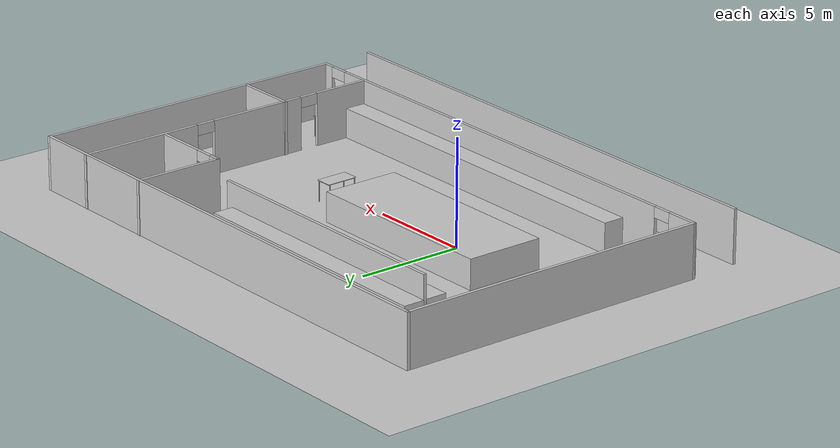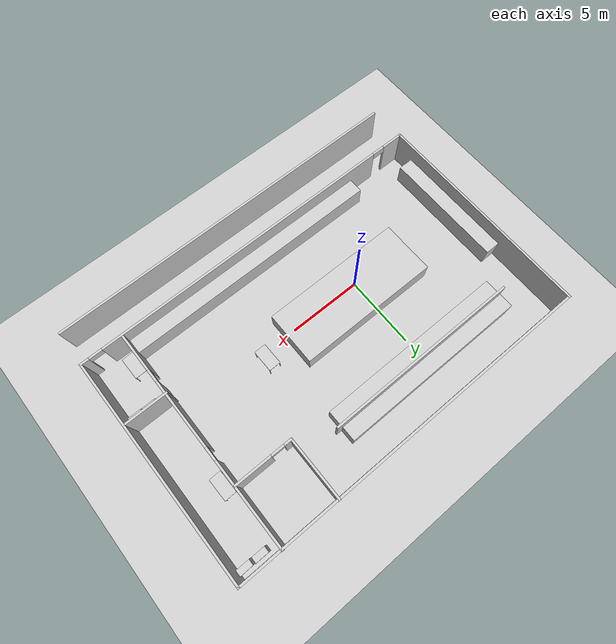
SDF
<sdf version="1.8">
 <world name="lab">
  <model name="ground_plane">
   <static>1</static>
   <link name="link">
    <collision name="collision">
     <geometry><plane><normal>0 0 1</normal><size>100 100</size></plane></geometry>
     <surface>
      <contact><collide_bitmask>65535</collide_bitmask></contact>
      <friction><ode><mu>100</mu><mu2>50</mu2></ode></friction>
     </surface>
    </collision>
    <visual name="visual">
     <cast_shadows>0</cast_shadows>
     <geometry><plane><normal>0 0 1</normal><size>100 100</size></plane></geometry>
     <material>
      <ambient>0.8 0.8 0.8 1.0</ambient>
      <diffuse>0.8 0.8 0.8 1.0</diffuse>
      <specular>0.2 0.2 0.2 1.0</specular>
     </material>
    </visual>
   </link>
  </model>
  <model name="robotics_lab.world">
   <pose>3.78652 0.790514 0 0 -0 0</pose>
   <link name="Wall_1">
    <collision name="Wall_1_Collision">
     <geometry><box><size>24.75 0.15 2.5</size></box></geometry>
     <pose>0 0 1.25 0 -0 0</pose>
    </collision>
    <visual name="Wall_1_Visual">
     <pose>0 0 1.25 0 -0 0</pose>
     <geometry><box><size>24.75 0.15 2.5</size></box></geometry>
     <material>
      <ambient>1 1 1 1</ambient>
      <diffuse>0.8 0.8 0.8 1.0</diffuse>
      <specular>0.2 0.2 0.2 1.0</specular>
     </material>
     <meta><layer>0</layer></meta>
    </visual>
    <pose>0.061202 -8.77446 0 0 -0 0</pose>
   </link>
   <link name="Wall_11">
    <collision name="Wall_11_Collision">
     <geometry><box><size>3 0.15 2.5</size></box></geometry>
     <pose>0 0 1.25 0 -0 0</pose>
    </collision>
    <visual name="Wall_11_Visual">
     <pose>0 0 1.25 0 -0 0</pose>
     <geometry><box><size>3 0.15 2.5</size></box></geometry>
     <material>
      <ambient>1 1 1 1</ambient>
      <diffuse>0.8 0.8 0.8 1.0</diffuse>
      <specular>0.2 0.2 0.2 1.0</specular>
     </material>
     <meta><layer>0</layer></meta>
    </visual>
    <pose>10.9822 -1.85152 0 0 -0 0</pose>
   </link>
   <link name="Wall_13">
    <collision name="Wall_13_Collision">
     <geometry><box><size>4.25 0.15 2.5</size></box></geometry>
     <pose>0 0 1.25 0 -0 0</pose>
    </collision>
    <visual name="Wall_13_Visual">
     <pose>0 0 1.25 0 -0 0</pose>
     <geometry><box><size>4.25 0.15 2.5</size></box></geometry>
     <material>
      <ambient>1 1 1 1</ambient>
      <diffuse>0.8 0.8 0.8 1.0</diffuse>
      <specular>0.2 0.2 0.2 1.0</specular>
     </material>
     <meta><layer>0</layer></meta>
    </visual>
    <pose>5.72266 6.72246 0 0 -0 -1.5708</pose>
   </link>
   <link name="Wall_14">
    <pose>7.64766 4.67246 0 0 -0 0</pose>
    <visual name="Wall_14_Visual_0">
     <pose>-1.71259 0 1.25 0 -0 0</pose>
     <geometry><box><size>0.574826 0.15 2.5</size></box></geometry>
     <material>
      <ambient>1 1 1 1</ambient>
      <diffuse>0.8 0.8 0.8 1.0</diffuse>
      <specular>0.2 0.2 0.2 1.0</specular>
     </material>
     <meta><layer>0</layer></meta>
    </visual>
    <collision name="Wall_14_Collision_0">
     <geometry><box><size>0.574826 0.15 2.5</size></box></geometry>
     <pose>-1.71259 0 1.25 0 -0 0</pose>
    </collision>
    <visual name="Wall_14_Visual_1">
     <pose>0.737413 0 1.25 0 -0 0</pose>
     <geometry><box><size>2.52517 0.15 2.5</size></box></geometry>
     <material>
      <ambient>1 1 1 1</ambient>
      <diffuse>0.8 0.8 0.8 1.0</diffuse>
      <specular>0.2 0.2 0.2 1.0</specular>
     </material>
     <meta><layer>0</layer></meta>
    </visual>
    <collision name="Wall_14_Collision_1">
     <geometry><box><size>2.52517 0.15 2.5</size></box></geometry>
     <pose>0.737413 0 1.25 0 -0 0</pose>
    </collision>
    <visual name="Wall_14_Visual_2">
     <pose>-0.975174 0 2.25 0 -0 0</pose>
     <geometry><box><size>0.9 0.15 0.5</size></box></geometry>
     <material>
      <ambient>1 1 1 1</ambient>
      <diffuse>0.8 0.8 0.8 1.0</diffuse>
      <specular>0.2 0.2 0.2 1.0</specular>
     </material>
     <meta><layer>0</layer></meta>
    </visual>
    <collision name="Wall_14_Collision_2">
     <geometry><box><size>0.9 0.15 0.5</size></box></geometry>
     <pose>-0.975174 0 2.25 0 -0 0</pose>
    </collision>
   </link>
   <link name="Wall_16">
    <collision name="Wall_16_Collision">
     <geometry><box><size>13.25 0.15 2.5</size></box></geometry>
     <pose>0 0 1.25 0 -0 0</pose>
    </collision>
    <visual name="Wall_16_Visual">
     <pose>0 0 1.25 0 -0 0</pose>
     <geometry><box><size>13.25 0.15 2.5</size></box></geometry>
     <material>
      <ambient>1 1 1 1</ambient>
      <diffuse>0.8 0.8 0.8 1.0</diffuse>
      <specular>0.2 0.2 0.2 1.0</specular>
     </material>
     <meta><layer>0</layer></meta>
    </visual>
    <pose>-3.24117 5.81745 0 0 -0 0</pose>
   </link>
   <link name="Wall_4">
    <pose>1e-06 -6.35384 0 0 -0 0</pose>
    <visual name="Wall_4_Visual_0">
     <pose>-11.7224 0 1.25 0 -0 0</pose>
     <geometry><box><size>1.55525 0.15 2.5</size></box></geometry>
     <material>
      <ambient>1 1 1 1</ambient>
      <diffuse>0.8 0.8 0.8 1.0</diffuse>
      <specular>0.2 0.2 0.2 1.0</specular>
     </material>
     <meta><layer>0</layer></meta>
    </visual>
    <collision name="Wall_4_Collision_0">
     <geometry><box><size>1.55525 0.15 2.5</size></box></geometry>
     <pose>-11.7224 0 1.25 0 -0 0</pose>
    </collision>
    <visual name="Wall_4_Visual_1">
     <pose>0.467707 0 1.25 0 -0 0</pose>
     <geometry><box><size>21.0249 0.15 2.5</size></box></geometry>
     <material>
      <ambient>1 1 1 1</ambient>
      <diffuse>0.8 0.8 0.8 1.0</diffuse>
      <specular>0.2 0.2 0.2 1.0</specular>
     </material>
     <meta><layer>0</layer></meta>
    </visual>
    <collision name="Wall_4_Collision_1">
     <geometry><box><size>21.0249 0.15 2.5</size></box></geometry>
     <pose>0.467707 0 1.25 0 -0 0</pose>
    </collision>
    <visual name="Wall_4_Visual_2">
     <pose>12.1901 0 1.25 0 -0 0</pose>
     <geometry><box><size>0.61984 0.15 2.5</size></box></geometry>
     <material>
      <ambient>1 1 1 1</ambient>
      <diffuse>0.8 0.8 0.8 1.0</diffuse>
      <specular>0.2 0.2 0.2 1.0</specular>
     </material>
     <meta><layer>0</layer></meta>
    </visual>
    <collision name="Wall_4_Collision_2">
     <geometry><box><size>0.61984 0.15 2.5</size></box></geometry>
     <pose>12.1901 0 1.25 0 -0 0</pose>
    </collision>
    <visual name="Wall_4_Visual_3">
     <pose>-10.4947 0 2.25 0 -0 0</pose>
     <geometry><box><size>0.9 0.15 0.5</size></box></geometry>
     <material>
      <ambient>1 1 1 1</ambient>
      <diffuse>0.8 0.8 0.8 1.0</diffuse>
      <specular>0.2 0.2 0.2 1.0</specular>
     </material>
     <meta><layer>0</layer></meta>
    </visual>
    <collision name="Wall_4_Collision_3">
     <geometry><box><size>0.9 0.15 0.5</size></box></geometry>
     <pose>-10.4947 0 2.25 0 -0 0</pose>
    </collision>
    <visual name="Wall_4_Visual_4">
     <pose>11.4302 0 2.25 0 -0 0</pose>
     <geometry><box><size>0.9 0.15 0.5</size></box></geometry>
     <material>
      <ambient>1 1 1 1</ambient>
      <diffuse>0.8 0.8 0.8 1.0</diffuse>
      <specular>0.2 0.2 0.2 1.0</specular>
     </material>
     <meta><layer>0</layer></meta>
    </visual>
    <collision name="Wall_4_Collision_4">
     <geometry><box><size>0.9 0.15 0.5</size></box></geometry>
     <pose>11.4302 0 2.25 0 -0 0</pose>
    </collision>
   </link>
   <link name="Wall_5">
    <collision name="Wall_5_Collision">
     <geometry><box><size>15.25 0.15 2.5</size></box></geometry>
     <pose>0 0 1.25 0 -0 0</pose>
    </collision>
    <visual name="Wall_5_Visual">
     <pose>0 0 1.25 0 -0 0</pose>
     <geometry><box><size>15.25 0.15 2.5</size></box></geometry>
     <material>
      <ambient>1 1 1 1</ambient>
      <diffuse>0.8 0.8 0.8 1.0</diffuse>
      <specular>0.2 0.2 0.2 1.0</specular>
     </material>
     <meta><layer>0</layer></meta>
    </visual>
    <pose>12.425 1.19616 0 0 -0 1.5708</pose>
   </link>
   <link name="Wall_6">
    <collision name="Wall_6_Collision">
     <geometry><box><size>25 0.15 2.5</size></box></geometry>
     <pose>0 0 1.25 0 -0 0</pose>
    </collision>
    <visual name="Wall_6_Visual">
     <pose>0 0 1.25 0 -0 0</pose>
     <geometry><box><size>25 0.15 2.5</size></box></geometry>
     <material>
      <ambient>1 1 1 1</ambient>
      <diffuse>0.8 0.8 0.8 1.0</diffuse>
      <specular>0.2 0.2 0.2 1.0</specular>
     </material>
     <meta><layer>0</layer></meta>
    </visual>
    <pose>1e-06 8.74616 0 0 -0 3.14159</pose>
   </link>
   <link name="Wall_7">
    <collision name="Wall_7_Collision">
     <geometry><box><size>15.25 0.15 2.5</size></box></geometry>
     <pose>0 0 1.25 0 -0 0</pose>
    </collision>
    <visual name="Wall_7_Visual">
     <pose>0 0 1.25 0 -0 0</pose>
     <geometry><box><size>15.25 0.15 2.5</size></box></geometry>
     <material>
      <ambient>1 1 1 1</ambient>
      <diffuse>0.8 0.8 0.8 1.0</diffuse>
      <specular>0.2 0.2 0.2 1.0</specular>
     </material>
     <meta><layer>0</layer></meta>
    </visual>
    <pose>-12.425 1.19616 0 0 -0 -1.5708</pose>
   </link>
   <link name="Wall_9">
    <pose>9.61573 1.22446 0 0 -0 -1.5708</pose>
    <visual name="Wall_9_Visual_0">
     <pose>-4.663 0 1.25 0 -0 0</pose>
     <geometry><box><size>5.92399 0.15 2.5</size></box></geometry>
     <material>
      <ambient>1 1 1 1</ambient>
      <diffuse>0.8 0.8 0.8 1.0</diffuse>
      <specular>0.2 0.2 0.2 1.0</specular>
     </material>
     <meta><layer>0</layer></meta>
    </visual>
    <collision name="Wall_9_Collision_0">
     <geometry><box><size>5.92399 0.15 2.5</size></box></geometry>
     <pose>-4.663 0 1.25 0 -0 0</pose>
    </collision>
    <visual name="Wall_9_Visual_1">
     <pose>1.58089 0 1.25 0 -0 0</pose>
     <geometry><box><size>4.76378 0.15 2.5</size></box></geometry>
     <material>
      <ambient>1 1 1 1</ambient>
      <diffuse>0.8 0.8 0.8 1.0</diffuse>
      <specular>0.2 0.2 0.2 1.0</specular>
     </material>
     <meta><layer>0</layer></meta>
    </visual>
    <collision name="Wall_9_Collision_1">
     <geometry><box><size>4.76378 0.15 2.5</size></box></geometry>
     <pose>1.58089 0 1.25 0 -0 0</pose>
    </collision>
    <visual name="Wall_9_Visual_2">
     <pose>6.24389 0 1.25 0 -0 0</pose>
     <geometry><box><size>2.76222 0.15 2.5</size></box></geometry>
     <material>
      <ambient>1 1 1 1</ambient>
      <diffuse>0.8 0.8 0.8 1.0</diffuse>
      <specular>0.2 0.2 0.2 1.0</specular>
     </material>
     <meta><layer>0</layer></meta>
    </visual>
    <collision name="Wall_9_Collision_2">
     <geometry><box><size>2.76222 0.15 2.5</size></box></geometry>
     <pose>6.24389 0 1.25 0 -0 0</pose>
    </collision>
    <visual name="Wall_9_Visual_3">
     <pose>-1.25101 0 2.25 0 -0 0</pose>
     <geometry><box><size>0.9 0.15 0.5</size></box></geometry>
     <material>
      <ambient>1 1 1 1</ambient>
      <diffuse>0.8 0.8 0.8 1.0</diffuse>
      <specular>0.2 0.2 0.2 1.0</specular>
     </material>
     <meta><layer>0</layer></meta>
    </visual>
    <collision name="Wall_9_Collision_3">
     <geometry><box><size>0.9 0.15 0.5</size></box></geometry>
     <pose>-1.25101 0 2.25 0 -0 0</pose>
    </collision>
    <visual name="Wall_9_Visual_4">
     <pose>4.41277 0 2.25 0 -0 0</pose>
     <geometry><box><size>0.9 0.15 0.5</size></box></geometry>
     <material>
      <ambient>1 1 1 1</ambient>
      <diffuse>0.8 0.8 0.8 1.0</diffuse>
      <specular>0.2 0.2 0.2 1.0</specular>
     </material>
     <meta><layer>0</layer></meta>
    </visual>
    <collision name="Wall_9_Collision_4">
     <geometry><box><size>0.9 0.15 0.5</size></box></geometry>
     <pose>4.41277 0 2.25 0 -0 0</pose>
    </collision>
   </link>
   <static>1</static>
  </model>
  <model name="model_editor">
   <link name="link_0">
    <inertial>
     <mass>18.0708</mass>
     <inertia><ixx>4.46291</ixx><ixy>0</ixy><ixz>0</ixz><iyy>253.408</iyy><iyz>0</iyz><izz>251.957</izz></inertia>
    </inertial>
    <pose>-7.47746 3.85814 0.409871 0 -0 0</pose>
    <visual name="visual">
     <geometry><box><size>12.8963 1 1.40129</size></box></geometry>
     <material>
      <lighting>1</lighting>
      <shader type="pixel"/>
      <ambient>0.8 0.8 0.8 1.0</ambient>
      <diffuse>0.8 0.8 0.8 1.0</diffuse>
      <specular>0.2 0.2 0.2 1.0</specular>
     </material>
    </visual>
    <collision name="collision">
     <geometry><box><size>12.8963 1 1.40129</size></box></geometry>
     <surface>
      <friction>
       <ode><mu>1</mu><mu2>1</mu2><fdir1>0 0 0</fdir1><slip1>0</slip1><slip2>0</slip2></ode>
       <torsional>
        <coefficient>1</coefficient>
        <patch_radius>0</patch_radius>
        <surface_radius>0</surface_radius>
        <use_patch_radius>1</use_patch_radius>
        <ode><slip>0</slip></ode>
       </torsional>
      </friction>
      <bounce><restitution_coefficient>0</restitution_coefficient><threshold>1e+06</threshold></bounce>
      <contact>
       <collide_without_contact>0</collide_without_contact>
       <collide_without_contact_bitmask>1</collide_without_contact_bitmask>
       <collide_bitmask>1</collide_bitmask>
       <ode>
        <soft_cfm>0</soft_cfm>
        <soft_erp>0.2</soft_erp>
        <kp>1e+13</kp>
        <kd>1</kd>
        <max_vel>0.01</max_vel>
        <min_depth>0</min_depth>
       </ode>
       <bullet>
        <split_impulse>1</split_impulse>
        <split_impulse_penetration_threshold>-0.01</split_impulse_penetration_threshold>
        <soft_cfm>0</soft_cfm>
        <soft_erp>0.2</soft_erp>
        <kp>1e+13</kp>
        <kd>1</kd>
       </bullet>
      </contact>
     </surface>
    </collision>
   </link>
   <link name="link_0_clone">
    <inertial>
     <mass>18.0708</mass>
     <inertia><ixx>4.46291</ixx><ixy>0</ixy><ixz>0</ixz><iyy>253.408</iyy><iyz>0</iyz><izz>251.957</izz></inertia>
    </inertial>
    <pose>-7.49983 5.0254 0.40987 0 -0 0</pose>
    <visual name="visual">
     <geometry><box><size>12.8963 1 1.40129</size></box></geometry>
     <material>
      <lighting>1</lighting>
      <shader type="pixel"/>
      <ambient>0.8 0.8 0.8 1.0</ambient>
      <diffuse>0.8 0.8 0.8 1.0</diffuse>
      <specular>0.2 0.2 0.2 1.0</specular>
     </material>
    </visual>
    <collision name="collision">
     <geometry><box><size>12.8963 1 1.40129</size></box></geometry>
     <surface>
      <friction>
       <ode><mu>1</mu><mu2>1</mu2><fdir1>0 0 0</fdir1><slip1>0</slip1><slip2>0</slip2></ode>
       <torsional>
        <coefficient>1</coefficient>
        <patch_radius>0</patch_radius>
        <surface_radius>0</surface_radius>
        <use_patch_radius>1</use_patch_radius>
        <ode><slip>0</slip></ode>
       </torsional>
      </friction>
      <bounce><restitution_coefficient>0</restitution_coefficient><threshold>1e+06</threshold></bounce>
      <contact>
       <collide_without_contact>0</collide_without_contact>
       <collide_without_contact_bitmask>1</collide_without_contact_bitmask>
       <collide_bitmask>1</collide_bitmask>
       <ode>
        <soft_cfm>0</soft_cfm>
        <soft_erp>0.2</soft_erp>
        <kp>1e+13</kp>
        <kd>1</kd>
        <max_vel>0.01</max_vel>
        <min_depth>0</min_depth>
       </ode>
       <bullet>
        <split_impulse>1</split_impulse>
        <split_impulse_penetration_threshold>-0.01</split_impulse_penetration_threshold>
        <soft_cfm>0</soft_cfm>
        <soft_erp>0.2</soft_erp>
        <kp>1e+13</kp>
        <kd>1</kd>
       </bullet>
      </contact>
     </surface>
    </collision>
   </link>
   <link name="link_0_clone_0">
    <inertial>
     <mass>24.7173</mass>
     <inertia><ixx>6.10438</ixx><ixy>0</ixy><ixz>0</ixz><iyy>644.956</iyy><iyz>0</iyz><izz>642.971</izz></inertia>
    </inertial>
    <pose>-3.33593 -7.13954 0.40987 0 -0 0</pose>
    <visual name="visual">
     <geometry><box><size>17.6396 1 1.40129</size></box></geometry>
     <material>
      <lighting>1</lighting>
      <shader type="pixel"/>
      <ambient>0.8 0.8 0.8 1.0</ambient>
      <diffuse>0.8 0.8 0.8 1.0</diffuse>
      <specular>0.2 0.2 0.2 1.0</specular>
     </material>
    </visual>
    <collision name="collision">
     <geometry><box><size>17.6396 1 1.40129</size></box></geometry>
     <surface>
      <friction>
       <ode><mu>1</mu><mu2>1</mu2><fdir1>0 0 0</fdir1><slip1>0</slip1><slip2>0</slip2></ode>
       <torsional>
        <coefficient>1</coefficient>
        <patch_radius>0</patch_radius>
        <surface_radius>0</surface_radius>
        <use_patch_radius>1</use_patch_radius>
        <ode><slip>0</slip></ode>
       </torsional>
      </friction>
      <bounce><restitution_coefficient>0</restitution_coefficient><threshold>1e+06</threshold></bounce>
      <contact>
       <collide_without_contact>0</collide_without_contact>
       <collide_without_contact_bitmask>1</collide_without_contact_bitmask>
       <collide_bitmask>1</collide_bitmask>
       <ode>
        <soft_cfm>0</soft_cfm>
        <soft_erp>0.2</soft_erp>
        <kp>1e+13</kp>
        <kd>1</kd>
        <max_vel>0.01</max_vel>
        <min_depth>0</min_depth>
       </ode>
       <bullet>
        <split_impulse>1</split_impulse>
        <split_impulse_penetration_threshold>-0.01</split_impulse_penetration_threshold>
        <soft_cfm>0</soft_cfm>
        <soft_erp>0.2</soft_erp>
        <kp>1e+13</kp>
        <kd>1</kd>
       </bullet>
      </contact>
     </surface>
    </collision>
   </link>
   <link name="link_0_clone_1">
    <inertial>
     <mass>50.1155</mass>
     <inertia><ixx>65.1768</ixx><ixy>0</ixy><ixz>0</ixz><iyy>399.775</iyy><iyz>0</iyz><izz>448.55</izz></inertia>
    </inertial>
    <pose>-6.90095 -1.54559 0.40987 0 -0 0</pose>
    <visual name="visual">
     <geometry><box><size>9.68304 3.69361 1.40129</size></box></geometry>
     <material>
      <lighting>1</lighting>
      <shader type="pixel"/>
      <ambient>0.8 0.8 0.8 1.0</ambient>
      <diffuse>0.8 0.8 0.8 1.0</diffuse>
      <specular>0.2 0.2 0.2 1.0</specular>
     </material>
    </visual>
    <collision name="collision">
     <geometry><box><size>9.68304 3.69361 1.40129</size></box></geometry>
     <surface>
      <friction>
       <ode><mu>1</mu><mu2>1</mu2><fdir1>0 0 0</fdir1><slip1>0</slip1><slip2>0</slip2></ode>
       <torsional>
        <coefficient>1</coefficient>
        <patch_radius>0</patch_radius>
        <surface_radius>0</surface_radius>
        <use_patch_radius>1</use_patch_radius>
        <ode><slip>0</slip></ode>
       </torsional>
      </friction>
      <bounce><restitution_coefficient>0</restitution_coefficient><threshold>1e+06</threshold></bounce>
      <contact>
       <collide_without_contact>0</collide_without_contact>
       <collide_without_contact_bitmask>1</collide_without_contact_bitmask>
       <collide_bitmask>1</collide_bitmask>
       <ode>
        <soft_cfm>0</soft_cfm>
        <soft_erp>0.2</soft_erp>
        <kp>1e+13</kp>
        <kd>1</kd>
        <max_vel>0.01</max_vel>
        <min_depth>0</min_depth>
       </ode>
       <bullet>
        <split_impulse>1</split_impulse>
        <split_impulse_penetration_threshold>-0.01</split_impulse_penetration_threshold>
        <soft_cfm>0</soft_cfm>
        <soft_erp>0.2</soft_erp>
        <kp>1e+13</kp>
        <kd>1</kd>
       </bullet>
      </contact>
     </surface>
    </collision>
   </link>
   <link name="link_0_clone_2">
    <inertial>
     <mass>11.5629</mass>
     <inertia><ixx>2.85567</ixx><ixy>0</ixy><ixz>0</ixz><iyy>67.506</iyy><iyz>0</iyz><izz>66.5775</izz></inertia>
    </inertial>
    <pose>-15.8863 -2.1349 0.40987 0 0 -1.57051</pose>
    <visual name="visual">
     <geometry><box><size>8.25192 1 1.40129</size></box></geometry>
     <material>
      <lighting>1</lighting>
      <shader type="pixel"/>
      <ambient>0.8 0.8 0.8 1.0</ambient>
      <diffuse>0.8 0.8 0.8 1.0</diffuse>
      <specular>0.2 0.2 0.2 1.0</specular>
     </material>
    </visual>
    <collision name="collision">
     <geometry><box><size>8.25192 1 1.40129</size></box></geometry>
     <surface>
      <friction>
       <ode><mu>1</mu><mu2>1</mu2><fdir1>0 0 0</fdir1><slip1>0</slip1><slip2>0</slip2></ode>
       <torsional>
        <coefficient>1</coefficient>
        <patch_radius>0</patch_radius>
        <surface_radius>0</surface_radius>
        <use_patch_radius>1</use_patch_radius>
        <ode><slip>0</slip></ode>
       </torsional>
      </friction>
      <bounce><restitution_coefficient>0</restitution_coefficient><threshold>1e+06</threshold></bounce>
      <contact>
       <collide_without_contact>0</collide_without_contact>
       <collide_without_contact_bitmask>1</collide_without_contact_bitmask>
       <collide_bitmask>1</collide_bitmask>
       <ode>
        <soft_cfm>0</soft_cfm>
        <soft_erp>0.2</soft_erp>
        <kp>1e+13</kp>
        <kd>1</kd>
        <max_vel>0.01</max_vel>
        <min_depth>0</min_depth>
       </ode>
       <bullet>
        <split_impulse>1</split_impulse>
        <split_impulse_penetration_threshold>-0.01</split_impulse_penetration_threshold>
        <soft_cfm>0</soft_cfm>
        <soft_erp>0.2</soft_erp>
        <kp>1e+13</kp>
        <kd>1</kd>
       </bullet>
      </contact>
     </surface>
    </collision>
   </link>
   <model name="bookshelf">
    <static>1</static>
    <link name="link">
     <inertial><mass>1</mass></inertial>
     <collision name="back">
      <pose>0 0.005 0.6 0 -0 0</pose>
      <geometry><box><size>0.9 0.01 1.2</size></box></geometry>
     </collision>
     <visual name="visual1">
      <pose>0 0.005 0.6 0 -0 0</pose>
      <geometry><box><size>0.9 0.01 1.2</size></box></geometry>
      <material>
       <ambient>0.8 0.8 0.8 1.0</ambient>
       <diffuse>0.8 0.8 0.8 1.0</diffuse>
       <specular>0.2 0.2 0.2 1.0</specular>
      </material>
     </visual>
     <collision name="left_side">
      <pose>0.45 -0.195 0.6 0 -0 0</pose>
      <geometry><box><size>0.02 0.4 1.2</size></box></geometry>
     </collision>
     <visual name="visual2">
      <pose>0.45 -0.195 0.6 0 -0 0</pose>
      <geometry><box><size>0.02 0.4 1.2</size></box></geometry>
      <material>
       <ambient>0.8 0.8 0.8 1.0</ambient>
       <diffuse>0.8 0.8 0.8 1.0</diffuse>
       <specular>0.2 0.2 0.2 1.0</specular>
      </material>
     </visual>
     <collision name="right_side">
      <pose>-0.45 -0.195 0.6 0 -0 0</pose>
      <geometry><box><size>0.02 0.4 1.2</size></box></geometry>
     </collision>
     <visual name="visual3">
      <pose>-0.45 -0.195 0.6 0 -0 0</pose>
      <geometry><box><size>0.02 0.4 1.2</size></box></geometry>
      <material>
       <ambient>0.8 0.8 0.8 1.0</ambient>
       <diffuse>0.8 0.8 0.8 1.0</diffuse>
       <specular>0.2 0.2 0.2 1.0</specular>
      </material>
     </visual>
     <collision name="bottom">
      <pose>0 -0.195 0.03 0 -0 0</pose>
      <geometry><box><size>0.88 0.4 0.06</size></box></geometry>
     </collision>
     <visual name="visual4">
      <pose>0 -0.195 0.03 0 -0 0</pose>
      <geometry><box><size>0.88 0.4 0.06</size></box></geometry>
      <material>
       <ambient>0.8 0.8 0.8 1.0</ambient>
       <diffuse>0.8 0.8 0.8 1.0</diffuse>
       <specular>0.2 0.2 0.2 1.0</specular>
      </material>
     </visual>
     <collision name="top">
      <pose>0 -0.195 1.19 0 -0 0</pose>
      <geometry><box><size>0.88 0.4 0.02</size></box></geometry>
     </collision>
     <visual name="visual5">
      <pose>0 -0.195 1.19 0 -0 0</pose>
      <geometry><box><size>0.88 0.4 0.02</size></box></geometry>
      <material>
       <ambient>0.8 0.8 0.8 1.0</ambient>
       <diffuse>0.8 0.8 0.8 1.0</diffuse>
       <specular>0.2 0.2 0.2 1.0</specular>
      </material>
     </visual>
     <collision name="low_shelf">
      <pose>0 -0.195 0.43 0 -0 0</pose>
      <geometry><box><size>0.88 0.4 0.02</size></box></geometry>
     </collision>
     <visual name="visual6">
      <pose>0 -0.195 0.43 0 -0 0</pose>
      <geometry><box><size>0.88 0.4 0.02</size></box></geometry>
      <material>
       <ambient>0.8 0.8 0.8 1.0</ambient>
       <diffuse>0.8 0.8 0.8 1.0</diffuse>
       <specular>0.2 0.2 0.2 1.0</specular>
      </material>
     </visual>
     <collision name="high_shelf">
      <pose>0 -0.195 0.8 0 -0 0</pose>
      <geometry><box><size>0.88 0.4 0.02</size></box></geometry>
     </collision>
     <visual name="visual7">
      <pose>0 -0.195 0.8 0 -0 0</pose>
      <geometry><box><size>0.88 0.4 0.02</size></box></geometry>
      <material>
       <ambient>0.8 0.8 0.8 1.0</ambient>
       <diffuse>0.8 0.8 0.8 1.0</diffuse>
       <specular>0.2 0.2 0.2 1.0</specular>
      </material>
     </visual>
    </link>
    <pose>6.78918 -3.41722 -0.292765 0 -0 0</pose>
   </model>
   <model name="bookshelf_clone">
    <static>1</static>
    <link name="link">
     <inertial><mass>1</mass></inertial>
     <collision name="back">
      <pose>0 0.005 0.6 0 -0 0</pose>
      <geometry><box><size>0.9 0.01 1.2</size></box></geometry>
     </collision>
     <visual name="visual1">
      <pose>0 0.005 0.6 0 -0 0</pose>
      <geometry><box><size>0.9 0.01 1.2</size></box></geometry>
      <material>
       <ambient>0.8 0.8 0.8 1.0</ambient>
       <diffuse>0.8 0.8 0.8 1.0</diffuse>
       <specular>0.2 0.2 0.2 1.0</specular>
      </material>
     </visual>
     <collision name="left_side">
      <pose>0.45 -0.195 0.6 0 -0 0</pose>
      <geometry><box><size>0.02 0.4 1.2</size></box></geometry>
     </collision>
     <visual name="visual2">
      <pose>0.45 -0.195 0.6 0 -0 0</pose>
      <geometry><box><size>0.02 0.4 1.2</size></box></geometry>
      <material>
       <ambient>0.8 0.8 0.8 1.0</ambient>
       <diffuse>0.8 0.8 0.8 1.0</diffuse>
       <specular>0.2 0.2 0.2 1.0</specular>
      </material>
     </visual>
     <collision name="right_side">
      <pose>-0.45 -0.195 0.6 0 -0 0</pose>
      <geometry><box><size>0.02 0.4 1.2</size></box></geometry>
     </collision>
     <visual name="visual3">
      <pose>-0.45 -0.195 0.6 0 -0 0</pose>
      <geometry><box><size>0.02 0.4 1.2</size></box></geometry>
      <material>
       <ambient>0.8 0.8 0.8 1.0</ambient>
       <diffuse>0.8 0.8 0.8 1.0</diffuse>
       <specular>0.2 0.2 0.2 1.0</specular>
      </material>
     </visual>
     <collision name="bottom">
      <pose>0 -0.195 0.03 0 -0 0</pose>
      <geometry><box><size>0.88 0.4 0.06</size></box></geometry>
     </collision>
     <visual name="visual4">
      <pose>0 -0.195 0.03 0 -0 0</pose>
      <geometry><box><size>0.88 0.4 0.06</size></box></geometry>
      <material>
       <ambient>0.8 0.8 0.8 1.0</ambient>
       <diffuse>0.8 0.8 0.8 1.0</diffuse>
       <specular>0.2 0.2 0.2 1.0</specular>
      </material>
     </visual>
     <collision name="top">
      <pose>0 -0.195 1.19 0 -0 0</pose>
      <geometry><box><size>0.88 0.4 0.02</size></box></geometry>
     </collision>
     <visual name="visual5">
      <pose>0 -0.195 1.19 0 -0 0</pose>
      <geometry><box><size>0.88 0.4 0.02</size></box></geometry>
      <material>
       <ambient>0.8 0.8 0.8 1.0</ambient>
       <diffuse>0.8 0.8 0.8 1.0</diffuse>
       <specular>0.2 0.2 0.2 1.0</specular>
      </material>
     </visual>
     <collision name="low_shelf">
      <pose>0 -0.195 0.43 0 -0 0</pose>
      <geometry><box><size>0.88 0.4 0.02</size></box></geometry>
     </collision>
     <visual name="visual6">
      <pose>0 -0.195 0.43 0 -0 0</pose>
      <geometry><box><size>0.88 0.4 0.02</size></box></geometry>
      <material>
       <ambient>0.8 0.8 0.8 1.0</ambient>
       <diffuse>0.8 0.8 0.8 1.0</diffuse>
       <specular>0.2 0.2 0.2 1.0</specular>
      </material>
     </visual>
     <collision name="high_shelf">
      <pose>0 -0.195 0.8 0 -0 0</pose>
      <geometry><box><size>0.88 0.4 0.02</size></box></geometry>
     </collision>
     <visual name="visual7">
      <pose>0 -0.195 0.8 0 -0 0</pose>
      <geometry><box><size>0.88 0.4 0.02</size></box></geometry>
      <material>
       <ambient>0.8 0.8 0.8 1.0</ambient>
       <diffuse>0.8 0.8 0.8 1.0</diffuse>
       <specular>0.2 0.2 0.2 1.0</specular>
      </material>
     </visual>
    </link>
    <pose>6.74104 7.03907 -0.292765 0 -0 0</pose>
   </model>
   <model name="bookshelf_clone_0">
    <static>1</static>
    <link name="link">
     <inertial><mass>1</mass></inertial>
     <collision name="back">
      <pose>0 0.005 0.6 0 -0 0</pose>
      <geometry><box><size>0.9 0.01 1.2</size></box></geometry>
     </collision>
     <visual name="visual1">
      <pose>0 0.005 0.6 0 -0 0</pose>
      <geometry><box><size>0.9 0.01 1.2</size></box></geometry>
      <material>
       <ambient>0.8 0.8 0.8 1.0</ambient>
       <diffuse>0.8 0.8 0.8 1.0</diffuse>
       <specular>0.2 0.2 0.2 1.0</specular>
      </material>
     </visual>
     <collision name="left_side">
      <pose>0.45 -0.195 0.6 0 -0 0</pose>
      <geometry><box><size>0.02 0.4 1.2</size></box></geometry>
     </collision>
     <visual name="visual2">
      <pose>0.45 -0.195 0.6 0 -0 0</pose>
      <geometry><box><size>0.02 0.4 1.2</size></box></geometry>
      <material>
       <ambient>0.8 0.8 0.8 1.0</ambient>
       <diffuse>0.8 0.8 0.8 1.0</diffuse>
       <specular>0.2 0.2 0.2 1.0</specular>
      </material>
     </visual>
     <collision name="right_side">
      <pose>-0.45 -0.195 0.6 0 -0 0</pose>
      <geometry><box><size>0.02 0.4 1.2</size></box></geometry>
     </collision>
     <visual name="visual3">
      <pose>-0.45 -0.195 0.6 0 -0 0</pose>
      <geometry><box><size>0.02 0.4 1.2</size></box></geometry>
      <material>
       <ambient>0.8 0.8 0.8 1.0</ambient>
       <diffuse>0.8 0.8 0.8 1.0</diffuse>
       <specular>0.2 0.2 0.2 1.0</specular>
      </material>
     </visual>
     <collision name="bottom">
      <pose>0 -0.195 0.03 0 -0 0</pose>
      <geometry><box><size>0.88 0.4 0.06</size></box></geometry>
     </collision>
     <visual name="visual4">
      <pose>0 -0.195 0.03 0 -0 0</pose>
      <geometry><box><size>0.88 0.4 0.06</size></box></geometry>
      <material>
       <ambient>0.8 0.8 0.8 1.0</ambient>
       <diffuse>0.8 0.8 0.8 1.0</diffuse>
       <specular>0.2 0.2 0.2 1.0</specular>
      </material>
     </visual>
     <collision name="top">
      <pose>0 -0.195 1.19 0 -0 0</pose>
      <geometry><box><size>0.88 0.4 0.02</size></box></geometry>
     </collision>
     <visual name="visual5">
      <pose>0 -0.195 1.19 0 -0 0</pose>
      <geometry><box><size>0.88 0.4 0.02</size></box></geometry>
      <material>
       <ambient>0.8 0.8 0.8 1.0</ambient>
       <diffuse>0.8 0.8 0.8 1.0</diffuse>
       <specular>0.2 0.2 0.2 1.0</specular>
      </material>
     </visual>
     <collision name="low_shelf">
      <pose>0 -0.195 0.43 0 -0 0</pose>
      <geometry><box><size>0.88 0.4 0.02</size></box></geometry>
     </collision>
     <visual name="visual6">
      <pose>0 -0.195 0.43 0 -0 0</pose>
      <geometry><box><size>0.88 0.4 0.02</size></box></geometry>
      <material>
       <ambient>0.8 0.8 0.8 1.0</ambient>
       <diffuse>0.8 0.8 0.8 1.0</diffuse>
       <specular>0.2 0.2 0.2 1.0</specular>
      </material>
     </visual>
     <collision name="high_shelf">
      <pose>0 -0.195 0.8 0 -0 0</pose>
      <geometry><box><size>0.88 0.4 0.02</size></box></geometry>
     </collision>
     <visual name="visual7">
      <pose>0 -0.195 0.8 0 -0 0</pose>
      <geometry><box><size>0.88 0.4 0.02</size></box></geometry>
      <material>
       <ambient>0.8 0.8 0.8 1.0</ambient>
       <diffuse>0.8 0.8 0.8 1.0</diffuse>
       <specular>0.2 0.2 0.2 1.0</specular>
      </material>
     </visual>
    </link>
    <pose>7.75648 -3.43464 -0.292765 0 -0 0</pose>
   </model>
   <model name="bookshelf_clone_1">
    <static>1</static>
    <link name="link">
     <inertial><mass>1</mass></inertial>
     <collision name="back">
      <pose>0 0.005 0.6 0 -0 0</pose>
      <geometry><box><size>0.9 0.01 1.2</size></box></geometry>
     </collision>
     <visual name="visual1">
      <pose>0 0.005 0.6 0 -0 0</pose>
      <geometry><box><size>0.9 0.01 1.2</size></box></geometry>
      <material>
       <ambient>0.8 0.8 0.8 1.0</ambient>
       <diffuse>0.8 0.8 0.8 1.0</diffuse>
       <specular>0.2 0.2 0.2 1.0</specular>
      </material>
     </visual>
     <collision name="left_side">
      <pose>0.45 -0.195 0.6 0 -0 0</pose>
      <geometry><box><size>0.02 0.4 1.2</size></box></geometry>
     </collision>
     <visual name="visual2">
      <pose>0.45 -0.195 0.6 0 -0 0</pose>
      <geometry><box><size>0.02 0.4 1.2</size></box></geometry>
      <material>
       <ambient>0.8 0.8 0.8 1.0</ambient>
       <diffuse>0.8 0.8 0.8 1.0</diffuse>
       <specular>0.2 0.2 0.2 1.0</specular>
      </material>
     </visual>
     <collision name="right_side">
      <pose>-0.45 -0.195 0.6 0 -0 0</pose>
      <geometry><box><size>0.02 0.4 1.2</size></box></geometry>
     </collision>
     <visual name="visual3">
      <pose>-0.45 -0.195 0.6 0 -0 0</pose>
      <geometry><box><size>0.02 0.4 1.2</size></box></geometry>
      <material>
       <ambient>0.8 0.8 0.8 1.0</ambient>
       <diffuse>0.8 0.8 0.8 1.0</diffuse>
       <specular>0.2 0.2 0.2 1.0</specular>
      </material>
     </visual>
     <collision name="bottom">
      <pose>0 -0.195 0.03 0 -0 0</pose>
      <geometry><box><size>0.88 0.4 0.06</size></box></geometry>
     </collision>
     <visual name="visual4">
      <pose>0 -0.195 0.03 0 -0 0</pose>
      <geometry><box><size>0.88 0.4 0.06</size></box></geometry>
      <material>
       <ambient>0.8 0.8 0.8 1.0</ambient>
       <diffuse>0.8 0.8 0.8 1.0</diffuse>
       <specular>0.2 0.2 0.2 1.0</specular>
      </material>
     </visual>
     <collision name="top">
      <pose>0 -0.195 1.19 0 -0 0</pose>
      <geometry><box><size>0.88 0.4 0.02</size></box></geometry>
     </collision>
     <visual name="visual5">
      <pose>0 -0.195 1.19 0 -0 0</pose>
      <geometry><box><size>0.88 0.4 0.02</size></box></geometry>
      <material>
       <ambient>0.8 0.8 0.8 1.0</ambient>
       <diffuse>0.8 0.8 0.8 1.0</diffuse>
       <specular>0.2 0.2 0.2 1.0</specular>
      </material>
     </visual>
     <collision name="low_shelf">
      <pose>0 -0.195 0.43 0 -0 0</pose>
      <geometry><box><size>0.88 0.4 0.02</size></box></geometry>
     </collision>
     <visual name="visual6">
      <pose>0 -0.195 0.43 0 -0 0</pose>
      <geometry><box><size>0.88 0.4 0.02</size></box></geometry>
      <material>
       <ambient>0.8 0.8 0.8 1.0</ambient>
       <diffuse>0.8 0.8 0.8 1.0</diffuse>
       <specular>0.2 0.2 0.2 1.0</specular>
      </material>
     </visual>
     <collision name="high_shelf">
      <pose>0 -0.195 0.8 0 -0 0</pose>
      <geometry><box><size>0.88 0.4 0.02</size></box></geometry>
     </collision>
     <visual name="visual7">
      <pose>0 -0.195 0.8 0 -0 0</pose>
      <geometry><box><size>0.88 0.4 0.02</size></box></geometry>
      <material>
       <ambient>0.8 0.8 0.8 1.0</ambient>
       <diffuse>0.8 0.8 0.8 1.0</diffuse>
       <specular>0.2 0.2 0.2 1.0</specular>
      </material>
     </visual>
    </link>
    <pose>7.7779 7.01971 -0.292765 0 -0 0</pose>
   </model>
   <model name="table">
    <static>1</static>
    <link name="link">
     <collision name="surface">
      <pose>0 0 1 0 -0 0</pose>
      <geometry><box><size>1.5 0.8 0.03</size></box></geometry>
      <surface><friction><ode><mu>0.6</mu><mu2>0.6</mu2></ode></friction></surface>
     </collision>
     <visual name="visual1">
      <pose>0 0 1 0 -0 0</pose>
      <geometry><box><size>1.5 0.8 0.03</size></box></geometry>
      <material>
       <ambient>0.8 0.8 0.8 1.0</ambient>
       <diffuse>0.8 0.8 0.8 1.0</diffuse>
       <specular>0.2 0.2 0.2 1.0</specular>
      </material>
     </visual>
     <collision name="front_left_leg">
      <pose>0.68 0.38 0.5 0 -0 0</pose>
      <geometry><cylinder><radius>0.02</radius><length>1</length></cylinder></geometry>
     </collision>
     <visual name="front_left_leg">
      <pose>0.68 0.38 0.5 0 -0 0</pose>
      <geometry><cylinder><radius>0.02</radius><length>1</length></cylinder></geometry>
      <material>
       <ambient>0.8 0.8 0.8 1.0</ambient>
       <diffuse>0.8 0.8 0.8 1.0</diffuse>
       <specular>0.2 0.2 0.2 1.0</specular>
      </material>
     </visual>
     <collision name="front_right_leg">
      <pose>0.68 -0.38 0.5 0 -0 0</pose>
      <geometry><cylinder><radius>0.02</radius><length>1</length></cylinder></geometry>
     </collision>
     <visual name="front_right_leg">
      <pose>0.68 -0.38 0.5 0 -0 0</pose>
      <geometry><cylinder><radius>0.02</radius><length>1</length></cylinder></geometry>
      <material>
       <ambient>0.8 0.8 0.8 1.0</ambient>
       <diffuse>0.8 0.8 0.8 1.0</diffuse>
       <specular>0.2 0.2 0.2 1.0</specular>
      </material>
     </visual>
     <collision name="back_right_leg">
      <pose>-0.68 -0.38 0.5 0 -0 0</pose>
      <geometry><cylinder><radius>0.02</radius><length>1</length></cylinder></geometry>
     </collision>
     <visual name="back_right_leg">
      <pose>-0.68 -0.38 0.5 0 -0 0</pose>
      <geometry><cylinder><radius>0.02</radius><length>1</length></cylinder></geometry>
      <material>
       <ambient>0.8 0.8 0.8 1.0</ambient>
       <diffuse>0.8 0.8 0.8 1.0</diffuse>
       <specular>0.2 0.2 0.2 1.0</specular>
      </material>
     </visual>
     <collision name="back_left_leg">
      <pose>-0.68 0.38 0.5 0 -0 0</pose>
      <geometry><cylinder><radius>0.02</radius><length>1</length></cylinder></geometry>
     </collision>
     <visual name="back_left_leg">
      <pose>-0.68 0.38 0.5 0 -0 0</pose>
      <geometry><cylinder><radius>0.02</radius><length>1</length></cylinder></geometry>
      <material>
       <ambient>0.8 0.8 0.8 1.0</ambient>
       <diffuse>0.8 0.8 0.8 1.0</diffuse>
       <specular>0.2 0.2 0.2 1.0</specular>
      </material>
     </visual>
    </link>
    <pose>-0.313936 -1.6083 -0.292765 0 0 -1.56029</pose>
   </model>
   <model name="table_clone">
    <static>1</static>
    <link name="link">
     <collision name="surface">
      <pose>0 0 1 0 -0 0</pose>
      <geometry><box><size>1.5 0.8 0.03</size></box></geometry>
      <surface><friction><ode><mu>0.6</mu><mu2>0.6</mu2></ode></friction></surface>
     </collision>
     <visual name="visual1">
      <pose>0 0 1 0 -0 0</pose>
      <geometry><box><size>1.5 0.8 0.03</size></box></geometry>
      <material>
       <ambient>0.8 0.8 0.8 1.0</ambient>
       <diffuse>0.8 0.8 0.8 1.0</diffuse>
       <specular>0.2 0.2 0.2 1.0</specular>
      </material>
     </visual>
     <collision name="front_left_leg">
      <pose>0.68 0.38 0.5 0 -0 0</pose>
      <geometry><cylinder><radius>0.02</radius><length>1</length></cylinder></geometry>
     </collision>
     <visual name="front_left_leg">
      <pose>0.68 0.38 0.5 0 -0 0</pose>
      <geometry><cylinder><radius>0.02</radius><length>1</length></cylinder></geometry>
      <material>
       <ambient>0.8 0.8 0.8 1.0</ambient>
       <diffuse>0.8 0.8 0.8 1.0</diffuse>
       <specular>0.2 0.2 0.2 1.0</specular>
      </material>
     </visual>
     <collision name="front_right_leg">
      <pose>0.68 -0.38 0.5 0 -0 0</pose>
      <geometry><cylinder><radius>0.02</radius><length>1</length></cylinder></geometry>
     </collision>
     <visual name="front_right_leg">
      <pose>0.68 -0.38 0.5 0 -0 0</pose>
      <geometry><cylinder><radius>0.02</radius><length>1</length></cylinder></geometry>
      <material>
       <ambient>0.8 0.8 0.8 1.0</ambient>
       <diffuse>0.8 0.8 0.8 1.0</diffuse>
       <specular>0.2 0.2 0.2 1.0</specular>
      </material>
     </visual>
     <collision name="back_right_leg">
      <pose>-0.68 -0.38 0.5 0 -0 0</pose>
      <geometry><cylinder><radius>0.02</radius><length>1</length></cylinder></geometry>
     </collision>
     <visual name="back_right_leg">
      <pose>-0.68 -0.38 0.5 0 -0 0</pose>
      <geometry><cylinder><radius>0.02</radius><length>1</length></cylinder></geometry>
      <material>
       <ambient>0.8 0.8 0.8 1.0</ambient>
       <diffuse>0.8 0.8 0.8 1.0</diffuse>
       <specular>0.2 0.2 0.2 1.0</specular>
      </material>
     </visual>
     <collision name="back_left_leg">
      <pose>-0.68 0.38 0.5 0 -0 0</pose>
      <geometry><cylinder><radius>0.02</radius><length>1</length></cylinder></geometry>
     </collision>
     <visual name="back_left_leg">
      <pose>-0.68 0.38 0.5 0 -0 0</pose>
      <geometry><cylinder><radius>0.02</radius><length>1</length></cylinder></geometry>
      <material>
       <ambient>0.8 0.8 0.8 1.0</ambient>
       <diffuse>0.8 0.8 0.8 1.0</diffuse>
       <specular>0.2 0.2 0.2 1.0</specular>
      </material>
     </visual>
    </link>
    <pose>6.15213 -6.34003 -0.292765 0 0 -1.56029</pose>
   </model>
   <model name="table_clone_0">
    <static>1</static>
    <link name="link">
     <collision name="surface">
      <pose>0 0 1 0 -0 0</pose>
      <geometry><box><size>1.5 0.8 0.03</size></box></geometry>
      <surface><friction><ode><mu>0.6</mu><mu2>0.6</mu2></ode></friction></surface>
     </collision>
     <visual name="visual1">
      <pose>0 0 1 0 -0 0</pose>
      <geometry><box><size>1.5 0.8 0.03</size></box></geometry>
      <material>
       <ambient>0.8 0.8 0.8 1.0</ambient>
       <diffuse>0.8 0.8 0.8 1.0</diffuse>
       <specular>0.2 0.2 0.2 1.0</specular>
      </material>
     </visual>
     <collision name="front_left_leg">
      <pose>0.68 0.38 0.5 0 -0 0</pose>
      <geometry><cylinder><radius>0.02</radius><length>1</length></cylinder></geometry>
     </collision>
     <visual name="front_left_leg">
      <pose>0.68 0.38 0.5 0 -0 0</pose>
      <geometry><cylinder><radius>0.02</radius><length>1</length></cylinder></geometry>
      <material>
       <ambient>0.8 0.8 0.8 1.0</ambient>
       <diffuse>0.8 0.8 0.8 1.0</diffuse>
       <specular>0.2 0.2 0.2 1.0</specular>
      </material>
     </visual>
     <collision name="front_right_leg">
      <pose>0.68 -0.38 0.5 0 -0 0</pose>
      <geometry><cylinder><radius>0.02</radius><length>1</length></cylinder></geometry>
     </collision>
     <visual name="front_right_leg">
      <pose>0.68 -0.38 0.5 0 -0 0</pose>
      <geometry><cylinder><radius>0.02</radius><length>1</length></cylinder></geometry>
      <material>
       <ambient>0.8 0.8 0.8 1.0</ambient>
       <diffuse>0.8 0.8 0.8 1.0</diffuse>
       <specular>0.2 0.2 0.2 1.0</specular>
      </material>
     </visual>
     <collision name="back_right_leg">
      <pose>-0.68 -0.38 0.5 0 -0 0</pose>
      <geometry><cylinder><radius>0.02</radius><length>1</length></cylinder></geometry>
     </collision>
     <visual name="back_right_leg">
      <pose>-0.68 -0.38 0.5 0 -0 0</pose>
      <geometry><cylinder><radius>0.02</radius><length>1</length></cylinder></geometry>
      <material>
       <ambient>0.8 0.8 0.8 1.0</ambient>
       <diffuse>0.8 0.8 0.8 1.0</diffuse>
       <specular>0.2 0.2 0.2 1.0</specular>
      </material>
     </visual>
     <collision name="back_left_leg">
      <pose>-0.68 0.38 0.5 0 -0 0</pose>
      <geometry><cylinder><radius>0.02</radius><length>1</length></cylinder></geometry>
     </collision>
     <visual name="back_left_leg">
      <pose>-0.68 0.38 0.5 0 -0 0</pose>
      <geometry><cylinder><radius>0.02</radius><length>1</length></cylinder></geometry>
      <material>
       <ambient>0.8 0.8 0.8 1.0</ambient>
       <diffuse>0.8 0.8 0.8 1.0</diffuse>
       <specular>0.2 0.2 0.2 1.0</specular>
      </material>
     </visual>
    </link>
    <pose>6.19759 2.67789 -0.292765 0 0 -1.56029</pose>
   </model>
   <static>1</static>
   <pose>7.82898 2.16369 0.292765 0 -0 0</pose>
  </model>
 </world>
</sdf>
